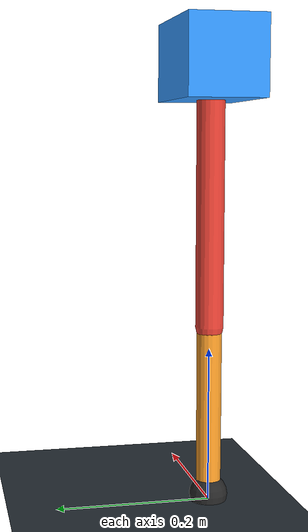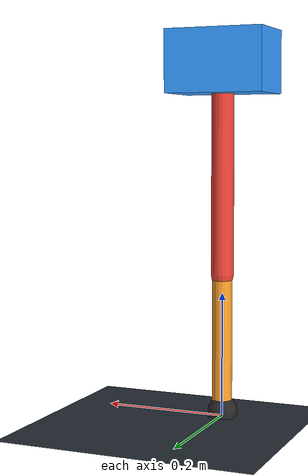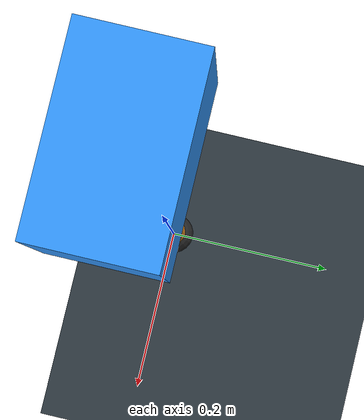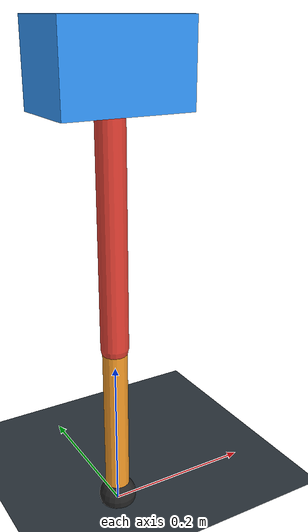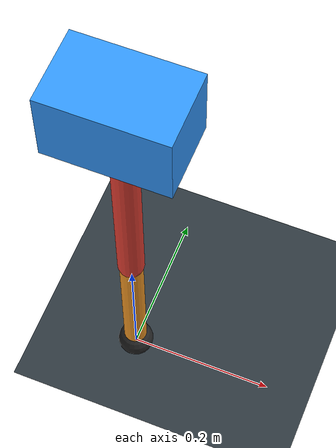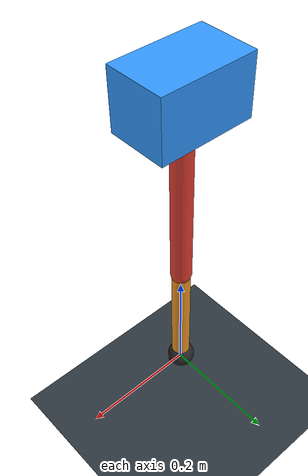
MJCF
<mujoco model="single_axis_two_bar">
  <compiler angle="radian" inertiafromgeom="true"/>
  <option timestep="0.001" integrator="implicitfast" gravity="0 0 -9.81"/>
  <default>
    <joint damping="0.08"/>
    <geom friction="1.2 0.01 0.0001" condim="3"/>
  </default>
  <worldbody>
    <geom name="floor" type="plane" size="5 5 0.1" rgba="0.18 0.22 0.25 1"/>
    <body name="carriage" pos="0 0 0.5687955799175306">
      <joint name="pole_slide" type="slide" axis="0 0 1"/>
      <geom name="payload" type="box" size="0.08 0.05 0.05" mass="2.577604235160038" rgba="0.2 0.6 1 1"/>
      <body name="thigh" pos="0 0 0">
        <joint name="hip" type="hinge" axis="0 1 0"/>
        <geom name="thigh_link" type="capsule" fromto="0 0 0 0 0 -0.3396332640722517" size="0.018" mass="0.2419931885091077" rgba="0.9 0.25 0.2 1"/>
        <body name="shank" pos="0 0 -0.3396332640722517">
          <joint name="knee" type="hinge" axis="0 1 0"/>
          <geom name="shank_link" type="capsule" fromto="0 0 0 0 0 -0.2209807358427282" size="0.016" mass="0.15745169429074093" rgba="0.95 0.6 0.15 1"/>
          <geom name="foot" type="sphere" pos="0 0 -0.2209807358427282" size="0.025" mass="0.03" rgba="0.15 0.15 0.15 1"/>
          <site name="toe" pos="0 0 -0.2209807358427282" size="0.008"/>
        </body>
      </body>
    </body>
  </worldbody>
  <actuator>
    <motor name="hip_motor" joint="hip" ctrlrange="-30.20901509286306 30.20901509286306"/>
    <motor name="knee_motor" joint="knee" ctrlrange="-101.18629684121399 101.18629684121399"/>
  </actuator>
</mujoco>
